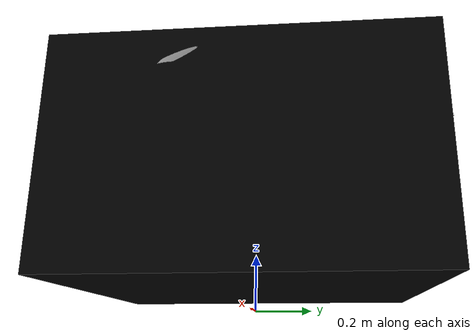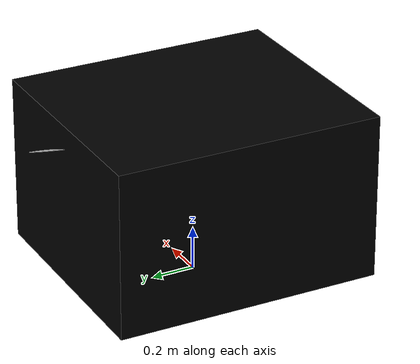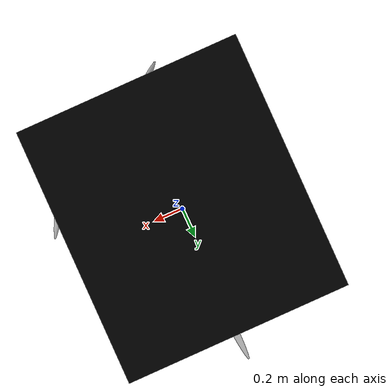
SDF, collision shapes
<?xml version='1.0'?>
<sdf version='1.7'>
  <model name='matrice_600_wl'>
    <pose>0 0 0.6 0 0 0</pose>
    <link name='base_link'>
      <inertial>
        <pose>-0.001268 0.003183 0.533364 0 -0 0</pose>
        <mass>9.81</mass>
        <inertia>
          <ixx>12.4987</ixx>
          <ixy>0</ixy>
          <ixz>0</ixz>
          <iyy>9.94137</iyy>
          <iyz>4.55281</iyz>
          <izz>17.1522</izz>
        </inertia>
      </inertial>
      <self_collide>0</self_collide>
      <enable_wind>0</enable_wind>
      <kinematic>0</kinematic>
      <pose>0 0 0 0 -0 0</pose>
      <gravity>1</gravity>
      <visual name='base_link_visual'>
        <pose>0 0 0 0 -0 0</pose>
        <geometry>
          <mesh>
            <scale>1 1 1</scale>
            <uri>model://matrice_600_wl/meshes/base_link.STL</uri>
          </mesh>
        </geometry>
        <material>
          <shader type='pixel'>
            <normal_map>__default__</normal_map>
          </shader>
          <script>
            <name>ModelPreview_1::base_link::base_link_visual_MATERIAL_</name>
          </script>
          <ambient>0 0 0 1</ambient>
          <diffuse>0 0 0 1</diffuse>
          <specular>0 0 0 1</specular>
          <emissive>0 0 0 1</emissive>
        </material>
        <transparency>0</transparency>
        <cast_shadows>1</cast_shadows>
      </visual>
      <collision name='collision_1'>
        <laser_retro>0</laser_retro>
        <max_contacts>10</max_contacts>
        <pose>0 0 -0.15 0 -0 0</pose>
        <geometry>
          <box>
            <size>1.06792 1.22192 0.758715</size>
          </box>
        </geometry>
        <surface>
          <friction>
            <ode>
              <mu>1</mu>
              <mu2>1</mu2>
              <fdir1>0 0 0</fdir1>
              <slip1>0</slip1>
              <slip2>0</slip2>
            </ode>
            <torsional>
              <coefficient>1</coefficient>
              <patch_radius>0</patch_radius>
              <surface_radius>0</surface_radius>
              <use_patch_radius>1</use_patch_radius>
              <ode>
                <slip>0</slip>
              </ode>
            </torsional>
          </friction>
          <bounce>
            <restitution_coefficient>0</restitution_coefficient>
            <threshold>1e+06</threshold>
          </bounce>
          <contact>
            <collide_without_contact>0</collide_without_contact>
            <collide_without_contact_bitmask>1</collide_without_contact_bitmask>
            <collide_bitmask>1</collide_bitmask>
            <ode>
              <soft_cfm>0</soft_cfm>
              <soft_erp>0.2</soft_erp>
              <kp>1e+13</kp>
              <kd>1</kd>
              <max_vel>0.01</max_vel>
              <min_depth>0</min_depth>
            </ode>
            <bullet>
              <split_impulse>1</split_impulse>
              <split_impulse_penetration_threshold>-0.01</split_impulse_penetration_threshold>
              <soft_cfm>0</soft_cfm>
              <soft_erp>0.2</soft_erp>
              <kp>1e+13</kp>
              <kd>1</kd>
            </bullet>
          </contact>
        </surface>
      </collision>
    </link>
    <link name='rotor1_link'>
      <pose>0 -0.56635 0.11921 0 -0 0</pose>
      <inertial>
        <pose>-1e-06 0.000339 -0.002574 0 -0 0</pose>
        <mass>0.0230909</mass>
        <inertia>
          <ixx>1.55154e-05</ixx>
          <ixy>-1.99747e-05</ixy>
          <ixz>2.80731e-06</ixz>
          <iyy>3.01024e-05</iyy>
          <iyz>2.10605e-06</iyz>
          <izz>4.47913e-05</izz>
        </inertia>
      </inertial>
      <self_collide>0</self_collide>
      <enable_wind>0</enable_wind>
      <kinematic>0</kinematic>
      <visual name='rotor1_link_visual'>
        <pose>0 0 0 0 -0 0</pose>
        <geometry>
          <mesh>
            <scale>1 1 1</scale>
            <uri>model://matrice_600_wl/meshes/rotor1_link.STL</uri>
          </mesh>
        </geometry>
        <material>
          <shader type='pixel'/>
        </material>
        <transparency>0</transparency>
        <cast_shadows>1</cast_shadows>
      </visual>
      <collision name='rotor1_link_collision'>
        <laser_retro>0</laser_retro>
        <max_contacts>10</max_contacts>
        <pose>0 0 0 0 -0 0</pose>
        <geometry>
          <mesh>
            <uri>/home/windrobo/model_editor_models/matrice_600_wl/meshes/rotor1_link.STL</uri>
            <scale>1 1 1</scale>
          </mesh>
        </geometry>
        <surface>
          <friction>
            <ode>
              <mu>1</mu>
              <mu2>1</mu2>
              <fdir1>0 0 0</fdir1>
              <slip1>0</slip1>
              <slip2>0</slip2>
            </ode>
            <torsional>
              <coefficient>1</coefficient>
              <patch_radius>0</patch_radius>
              <surface_radius>0</surface_radius>
              <use_patch_radius>1</use_patch_radius>
              <ode>
                <slip>0</slip>
              </ode>
            </torsional>
          </friction>
          <bounce>
            <restitution_coefficient>0</restitution_coefficient>
            <threshold>1e+06</threshold>
          </bounce>
          <contact>
            <collide_without_contact>0</collide_without_contact>
            <collide_without_contact_bitmask>1</collide_without_contact_bitmask>
            <collide_bitmask>1</collide_bitmask>
            <ode>
              <soft_cfm>0</soft_cfm>
              <soft_erp>0.2</soft_erp>
              <kp>1e+13</kp>
              <kd>1</kd>
              <max_vel>0.01</max_vel>
              <min_depth>0</min_depth>
            </ode>
            <bullet>
              <split_impulse>1</split_impulse>
              <split_impulse_penetration_threshold>-0.01</split_impulse_penetration_threshold>
              <soft_cfm>0</soft_cfm>
              <soft_erp>0.2</soft_erp>
              <kp>1e+13</kp>
              <kd>1</kd>
            </bullet>
          </contact>
        </surface>
      </collision>
    </link>
    <link name='rotor2_link'>
      <pose>0 0.56635 0.11521 0 -0 0</pose>
      <inertial>
        <pose>0.000161 -0.000257 -0.002048 0 -0 0</pose>
        <mass>0.0230912</mass>
        <inertia>
          <ixx>4.40522e-05</ixx>
          <ixy>-5.64014e-07</ixy>
          <ixz>-6.7576e-08</ixz>
          <iyy>1.8887e-06</iyy>
          <iyz>-5.17291e-06</iyz>
          <izz>4.44675e-05</izz>
        </inertia>
      </inertial>
      <self_collide>0</self_collide>
      <enable_wind>0</enable_wind>
      <kinematic>0</kinematic>
      <visual name='rotor2_link_visual'>
        <pose>0 0 0 0 -0 0</pose>
        <geometry>
          <mesh>
            <scale>1 1 1</scale>
            <uri>model://matrice_600_wl/meshes/rotor2_link.STL</uri>
          </mesh>
        </geometry>
        <material>
          <shader type='pixel'/>
        </material>
        <transparency>0</transparency>
        <cast_shadows>1</cast_shadows>
      </visual>
      <collision name='rotor2_link_collision'>
        <laser_retro>0</laser_retro>
        <max_contacts>10</max_contacts>
        <pose>0 0 0 0 -0 0</pose>
        <geometry>
          <mesh>
            <uri>/home/windrobo/model_editor_models/matrice_600_wl/meshes/rotor2_link.STL</uri>
            <scale>1 1 1</scale>
          </mesh>
        </geometry>
        <surface>
          <friction>
            <ode>
              <mu>1</mu>
              <mu2>1</mu2>
              <fdir1>0 0 0</fdir1>
              <slip1>0</slip1>
              <slip2>0</slip2>
            </ode>
            <torsional>
              <coefficient>1</coefficient>
              <patch_radius>0</patch_radius>
              <surface_radius>0</surface_radius>
              <use_patch_radius>1</use_patch_radius>
              <ode>
                <slip>0</slip>
              </ode>
            </torsional>
          </friction>
          <bounce>
            <restitution_coefficient>0</restitution_coefficient>
            <threshold>1e+06</threshold>
          </bounce>
          <contact>
            <collide_without_contact>0</collide_without_contact>
            <collide_without_contact_bitmask>1</collide_without_contact_bitmask>
            <collide_bitmask>1</collide_bitmask>
            <ode>
              <soft_cfm>0</soft_cfm>
              <soft_erp>0.2</soft_erp>
              <kp>1e+13</kp>
              <kd>1</kd>
              <max_vel>0.01</max_vel>
              <min_depth>0</min_depth>
            </ode>
            <bullet>
              <split_impulse>1</split_impulse>
              <split_impulse_penetration_threshold>-0.01</split_impulse_penetration_threshold>
              <soft_cfm>0</soft_cfm>
              <soft_erp>0.2</soft_erp>
              <kp>1e+13</kp>
              <kd>1</kd>
            </bullet>
          </contact>
        </surface>
      </collision>
    </link>
    <link name='rotor3_link'>
      <pose>0.49047 0.28317 0.11921 0 -0 0</pose>
      <inertial>
        <pose>0.000184 -0.000538 -0.001581 0 -0 0</pose>
        <mass>0.0230901</mass>
        <inertia>
          <ixx>4.40516e-05</ixx>
          <ixy>-5.67954e-07</ixy>
          <ixz>7.84508e-14</ixz>
          <iyy>1.26913e-06</iyy>
          <iyz>-1.1161e-12</iyz>
          <izz>4.50862e-05</izz>
        </inertia>
      </inertial>
      <self_collide>0</self_collide>
      <enable_wind>0</enable_wind>
      <kinematic>0</kinematic>
      <visual name='rotor3_link_visual'>
        <pose>0 0 0 0 -0 0</pose>
        <geometry>
          <mesh>
            <scale>1 1 1</scale>
            <uri>model://matrice_600_wl/meshes/rotor3_link.STL</uri>
          </mesh>
        </geometry>
        <material>
          <shader type='pixel'/>
        </material>
        <transparency>0</transparency>
        <cast_shadows>1</cast_shadows>
      </visual>
      <collision name='rotor3_link_collision'>
        <laser_retro>0</laser_retro>
        <max_contacts>10</max_contacts>
        <pose>0 0 0 0 -0 0</pose>
        <geometry>
          <mesh>
            <uri>/home/windrobo/model_editor_models/matrice_600_wl/meshes/rotor3_link.STL</uri>
            <scale>1 1 1</scale>
          </mesh>
        </geometry>
        <surface>
          <friction>
            <ode>
              <mu>1</mu>
              <mu2>1</mu2>
              <fdir1>0 0 0</fdir1>
              <slip1>0</slip1>
              <slip2>0</slip2>
            </ode>
            <torsional>
              <coefficient>1</coefficient>
              <patch_radius>0</patch_radius>
              <surface_radius>0</surface_radius>
              <use_patch_radius>1</use_patch_radius>
              <ode>
                <slip>0</slip>
              </ode>
            </torsional>
          </friction>
          <bounce>
            <restitution_coefficient>0</restitution_coefficient>
            <threshold>1e+06</threshold>
          </bounce>
          <contact>
            <collide_without_contact>0</collide_without_contact>
            <collide_without_contact_bitmask>1</collide_without_contact_bitmask>
            <collide_bitmask>1</collide_bitmask>
            <ode>
              <soft_cfm>0</soft_cfm>
              <soft_erp>0.2</soft_erp>
              <kp>1e+13</kp>
              <kd>1</kd>
              <max_vel>0.01</max_vel>
              <min_depth>0</min_depth>
            </ode>
            <bullet>
              <split_impulse>1</split_impulse>
              <split_impulse_penetration_threshold>-0.01</split_impulse_penetration_threshold>
              <soft_cfm>0</soft_cfm>
              <soft_erp>0.2</soft_erp>
              <kp>1e+13</kp>
              <kd>1</kd>
            </bullet>
          </contact>
        </surface>
      </collision>
    </link>
    <link name='rotor4_link'>
      <pose>-0.49047 -0.28317 0.11621 0 -0 0</pose>
      <inertial>
        <pose>-0.000477 -0.000372 -0.002145 0 -0 0</pose>
        <mass>0.0230901</mass>
        <inertia>
          <ixx>4.40542e-05</ixx>
          <ixy>-4.71047e-07</ixy>
          <ixz>8.73883e-09</ixz>
          <iyy>1.28192e-06</iyy>
          <iyz>8.14918e-07</iyz>
          <izz>4.50713e-05</izz>
        </inertia>
      </inertial>
      <self_collide>0</self_collide>
      <enable_wind>0</enable_wind>
      <kinematic>0</kinematic>
      <visual name='rotor4_link_visual'>
        <pose>0 0 0 0 -0 0</pose>
        <geometry>
          <mesh>
            <scale>1 1 1</scale>
            <uri>model://matrice_600_wl/meshes/rotor4_link.STL</uri>
          </mesh>
        </geometry>
        <material>
          <shader type='pixel'/>
        </material>
        <transparency>0</transparency>
        <cast_shadows>1</cast_shadows>
      </visual>
      <collision name='rotor4_link_collision'>
        <laser_retro>0</laser_retro>
        <max_contacts>10</max_contacts>
        <pose>0 0 0 0 -0 0</pose>
        <geometry>
          <mesh>
            <uri>/home/windrobo/model_editor_models/matrice_600_wl/meshes/rotor4_link.STL</uri>
            <scale>1 1 1</scale>
          </mesh>
        </geometry>
        <surface>
          <friction>
            <ode>
              <mu>1</mu>
              <mu2>1</mu2>
              <fdir1>0 0 0</fdir1>
              <slip1>0</slip1>
              <slip2>0</slip2>
            </ode>
            <torsional>
              <coefficient>1</coefficient>
              <patch_radius>0</patch_radius>
              <surface_radius>0</surface_radius>
              <use_patch_radius>1</use_patch_radius>
              <ode>
                <slip>0</slip>
              </ode>
            </torsional>
          </friction>
          <bounce>
            <restitution_coefficient>0</restitution_coefficient>
            <threshold>1e+06</threshold>
          </bounce>
          <contact>
            <collide_without_contact>0</collide_without_contact>
            <collide_without_contact_bitmask>1</collide_without_contact_bitmask>
            <collide_bitmask>1</collide_bitmask>
            <ode>
              <soft_cfm>0</soft_cfm>
              <soft_erp>0.2</soft_erp>
              <kp>1e+13</kp>
              <kd>1</kd>
              <max_vel>0.01</max_vel>
              <min_depth>0</min_depth>
            </ode>
            <bullet>
              <split_impulse>1</split_impulse>
              <split_impulse_penetration_threshold>-0.01</split_impulse_penetration_threshold>
              <soft_cfm>0</soft_cfm>
              <soft_erp>0.2</soft_erp>
              <kp>1e+13</kp>
              <kd>1</kd>
            </bullet>
          </contact>
        </surface>
      </collision>
    </link>
    <link name='rotor5_link'>
      <pose>0.49047 -0.28317 0.11821 0 -0 0</pose>
      <inertial>
        <pose>-0.000159 9.2e-05 -0.00268 0 -0 0</pose>
        <mass>0.023092</mass>
        <inertia>
          <ixx>3.0498e-05</ixx>
          <ixy>-1.9927e-05</ixy>
          <ixz>-3.7573e-07</ixz>
          <iyy>1.4851e-05</iyy>
          <iyz>-3.0049e-07</iyz>
          <izz>4.5065e-05</izz>
        </inertia>
      </inertial>
      <self_collide>0</self_collide>
      <enable_wind>0</enable_wind>
      <kinematic>0</kinematic>
      <visual name='rotor5_link_visual'>
        <pose>0 0 0 0 -0 0</pose>
        <geometry>
          <mesh>
            <scale>1 1 1</scale>
            <uri>model://matrice_600_wl/meshes/rotor5_link.STL</uri>
          </mesh>
        </geometry>
        <material>
          <shader type='pixel'/>
        </material>
        <transparency>0</transparency>
        <cast_shadows>1</cast_shadows>
      </visual>
      <collision name='rotor5_link_collision'>
        <laser_retro>0</laser_retro>
        <max_contacts>10</max_contacts>
        <pose>0 0 0 0 -0 0</pose>
        <geometry>
          <mesh>
            <uri>/home/windrobo/model_editor_models/matrice_600_wl/meshes/rotor5_link.STL</uri>
            <scale>1 1 1</scale>
          </mesh>
        </geometry>
        <surface>
          <friction>
            <ode>
              <mu>1</mu>
              <mu2>1</mu2>
              <fdir1>0 0 0</fdir1>
              <slip1>0</slip1>
              <slip2>0</slip2>
            </ode>
            <torsional>
              <coefficient>1</coefficient>
              <patch_radius>0</patch_radius>
              <surface_radius>0</surface_radius>
              <use_patch_radius>1</use_patch_radius>
              <ode>
                <slip>0</slip>
              </ode>
            </torsional>
          </friction>
          <bounce>
            <restitution_coefficient>0</restitution_coefficient>
            <threshold>1e+06</threshold>
          </bounce>
          <contact>
            <collide_without_contact>0</collide_without_contact>
            <collide_without_contact_bitmask>1</collide_without_contact_bitmask>
            <collide_bitmask>1</collide_bitmask>
            <ode>
              <soft_cfm>0</soft_cfm>
              <soft_erp>0.2</soft_erp>
              <kp>1e+13</kp>
              <kd>1</kd>
              <max_vel>0.01</max_vel>
              <min_depth>0</min_depth>
            </ode>
            <bullet>
              <split_impulse>1</split_impulse>
              <split_impulse_penetration_threshold>-0.01</split_impulse_penetration_threshold>
              <soft_cfm>0</soft_cfm>
              <soft_erp>0.2</soft_erp>
              <kp>1e+13</kp>
              <kd>1</kd>
            </bullet>
          </contact>
        </surface>
      </collision>
    </link>
    <link name='rotor6_link'>
      <pose>-0.49047 0.28317 0.11621 0 -0 0</pose>
      <inertial>
        <pose>0.00016 -0.000389 -0.002276 0 -0 0</pose>
        <mass>0.023091</mass>
        <inertia>
          <ixx>4.4027e-05</ixx>
          <ixy>-1.1807e-06</ixy>
          <ixz>-1.4292e-07</ixz>
          <iyy>1.919e-06</iyy>
          <iyz>-5.1912e-06</iyz>
          <izz>4.4463e-05</izz>
        </inertia>
      </inertial>
      <self_collide>0</self_collide>
      <enable_wind>0</enable_wind>
      <kinematic>0</kinematic>
      <visual name='rotor6_link_visual'>
        <pose>0 0 0 0 -0 0</pose>
        <geometry>
          <mesh>
            <scale>1 1 1</scale>
            <uri>model://matrice_600_wl/meshes/rotor6_link.STL</uri>
          </mesh>
        </geometry>
        <material>
          <shader type='pixel'/>
        </material>
        <transparency>0</transparency>
        <cast_shadows>1</cast_shadows>
      </visual>
      <collision name='rotor6_link_collision'>
        <laser_retro>0</laser_retro>
        <max_contacts>10</max_contacts>
        <pose>0 0 0 0 -0 0</pose>
        <geometry>
          <mesh>
            <uri>/home/windrobo/model_editor_models/matrice_600_wl/meshes/rotor6_link.STL</uri>
            <scale>1 1 1</scale>
          </mesh>
        </geometry>
        <surface>
          <friction>
            <ode>
              <mu>1</mu>
              <mu2>1</mu2>
              <fdir1>0 0 0</fdir1>
              <slip1>0</slip1>
              <slip2>0</slip2>
            </ode>
            <torsional>
              <coefficient>1</coefficient>
              <patch_radius>0</patch_radius>
              <surface_radius>0</surface_radius>
              <use_patch_radius>1</use_patch_radius>
              <ode>
                <slip>0</slip>
              </ode>
            </torsional>
          </friction>
          <bounce>
            <restitution_coefficient>0</restitution_coefficient>
            <threshold>1e+06</threshold>
          </bounce>
          <contact>
            <collide_without_contact>0</collide_without_contact>
            <collide_without_contact_bitmask>1</collide_without_contact_bitmask>
            <collide_bitmask>1</collide_bitmask>
            <ode>
              <soft_cfm>0</soft_cfm>
              <soft_erp>0.2</soft_erp>
              <kp>1e+13</kp>
              <kd>1</kd>
              <max_vel>0.01</max_vel>
              <min_depth>0</min_depth>
            </ode>
            <bullet>
              <split_impulse>1</split_impulse>
              <split_impulse_penetration_threshold>-0.01</split_impulse_penetration_threshold>
              <soft_cfm>0</soft_cfm>
              <soft_erp>0.2</soft_erp>
              <kp>1e+13</kp>
              <kd>1</kd>
            </bullet>
          </contact>
        </surface>
      </collision>
    </link>
    <joint name='rotor1_joint' type='revolute'>
      <parent>base_link</parent>
      <child>rotor1_link</child>
      <pose>0 0 0 0 -0 0</pose>
      <axis>
        <xyz>0 0.13917 0.99027</xyz>
        <limit>
          <lower>-6.283</lower>
          <upper>6.283</upper>
          <effort>0.001</effort>
          <velocity>0</velocity>
        </limit>
        <dynamics>
          <spring_reference>0</spring_reference>
          <spring_stiffness>0</spring_stiffness>
          <damping>0</damping>
          <friction>0</friction>
        </dynamics>
      </axis>
      <physics>
        <ode>
          <limit>
            <cfm>0</cfm>
            <erp>0.2</erp>
          </limit>
          <suspension>
            <cfm>0</cfm>
            <erp>0.2</erp>
          </suspension>
        </ode>
      </physics>
    </joint>
    <joint name='rotor2_joint' type='revolute'>
      <parent>base_link</parent>
      <child>rotor2_link</child>
      <pose>0 0 0 0 -0 0</pose>
      <axis>
        <xyz>0 -0.13917 0.99027</xyz>
        <limit>
          <lower>-6.283</lower>
          <upper>6.283</upper>
          <effort>0.001</effort>
          <velocity>0</velocity>
        </limit>
        <dynamics>
          <spring_reference>0</spring_reference>
          <spring_stiffness>0</spring_stiffness>
          <damping>0</damping>
          <friction>0</friction>
        </dynamics>
      </axis>
      <physics>
        <ode>
          <limit>
            <cfm>0</cfm>
            <erp>0.2</erp>
          </limit>
          <suspension>
            <cfm>0</cfm>
            <erp>0.2</erp>
          </suspension>
        </ode>
      </physics>
    </joint>
    <joint name='rotor3_joint' type='revolute'>
      <parent>base_link</parent>
      <child>rotor3_link</child>
      <pose>0 0 0 0 -0 0</pose>
      <axis>
        <xyz>0.12053 0.069587 -0.99027</xyz>
        <limit>
          <lower>-6.283</lower>
          <upper>6.283</upper>
          <effort>0.001</effort>
          <velocity>0</velocity>
        </limit>
        <dynamics>
          <spring_reference>0</spring_reference>
          <spring_stiffness>0</spring_stiffness>
          <damping>0</damping>
          <friction>0</friction>
        </dynamics>
      </axis>
      <physics>
        <ode>
          <limit>
            <cfm>0</cfm>
            <erp>0.2</erp>
          </limit>
          <suspension>
            <cfm>0</cfm>
            <erp>0.2</erp>
          </suspension>
        </ode>
      </physics>
    </joint>
    <joint name='rotor4_joint' type='revolute'>
      <parent>base_link</parent>
      <child>rotor4_link</child>
      <pose>0 0 0 0 -0 0</pose>
      <axis>
        <xyz>-0.12053 -0.069587 -0.99027</xyz>
        <limit>
          <lower>-6.283</lower>
          <upper>6.283</upper>
          <effort>0.001</effort>
          <velocity>0</velocity>
        </limit>
        <dynamics>
          <spring_reference>0</spring_reference>
          <spring_stiffness>0</spring_stiffness>
          <damping>0</damping>
          <friction>0</friction>
        </dynamics>
      </axis>
      <physics>
        <ode>
          <limit>
            <cfm>0</cfm>
            <erp>0.2</erp>
          </limit>
          <suspension>
            <cfm>0</cfm>
            <erp>0.2</erp>
          </suspension>
        </ode>
      </physics>
    </joint>
    <joint name='rotor5_joint' type='revolute'>
      <parent>base_link</parent>
      <child>rotor5_link</child>
      <pose>0 0 0 0 -0 0</pose>
      <axis>
        <xyz>0.12053 -0.069587 -0.99027</xyz>
        <limit>
          <lower>-6.283</lower>
          <upper>6.283</upper>
          <effort>0.001</effort>
          <velocity>0</velocity>
        </limit>
        <dynamics>
          <spring_reference>0</spring_reference>
          <spring_stiffness>0</spring_stiffness>
          <damping>0</damping>
          <friction>0</friction>
        </dynamics>
      </axis>
      <physics>
        <ode>
          <limit>
            <cfm>0</cfm>
            <erp>0.2</erp>
          </limit>
          <suspension>
            <cfm>0</cfm>
            <erp>0.2</erp>
          </suspension>
        </ode>
      </physics>
    </joint>
    <joint name='rotor6_joint' type='revolute'>
      <parent>base_link</parent>
      <child>rotor6_link</child>
      <pose>0 0 0 0 -0 0</pose>
      <axis>
        <xyz>-0.12053 0.069587 -0.99027</xyz>
        <limit>
          <lower>-6.283</lower>
          <upper>6.283</upper>
          <effort>0.001</effort>
          <velocity>0</velocity>
        </limit>
        <dynamics>
          <spring_reference>0</spring_reference>
          <spring_stiffness>0</spring_stiffness>
          <damping>0</damping>
          <friction>0</friction>
        </dynamics>
      </axis>
      <physics>
        <ode>
          <limit>
            <cfm>0</cfm>
            <erp>0.2</erp>
          </limit>
          <suspension>
            <cfm>0</cfm>
            <erp>0.2</erp>
          </suspension>
        </ode>
      </physics>
    </joint>
    <static>0</static>
    <allow_auto_disable>1</allow_auto_disable>
  </model>
</sdf>
